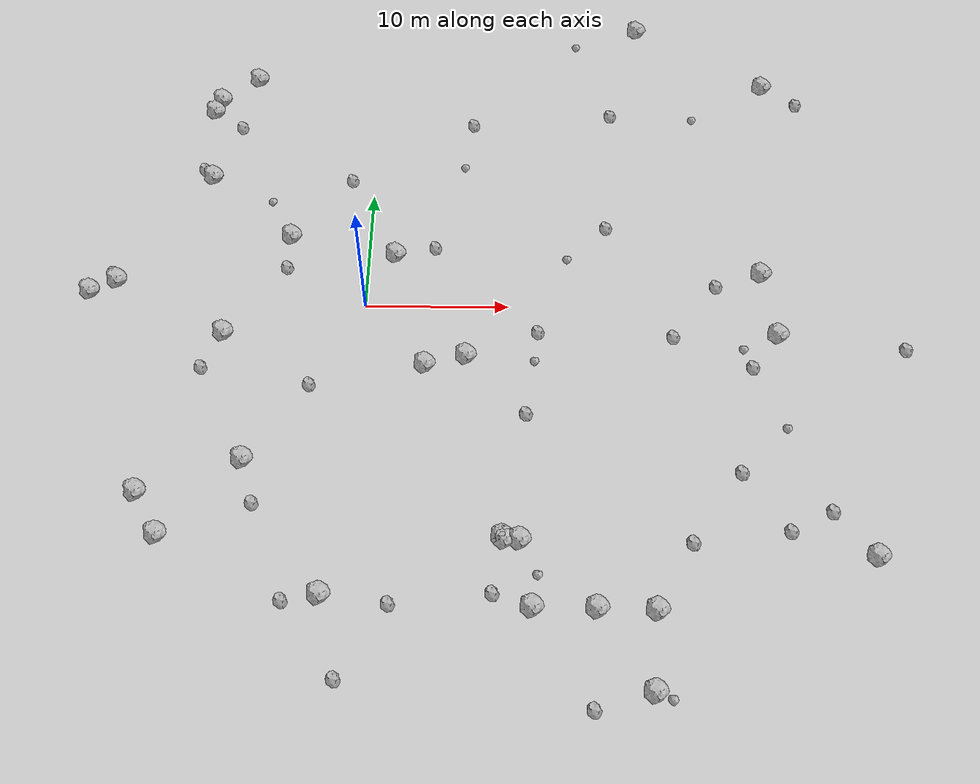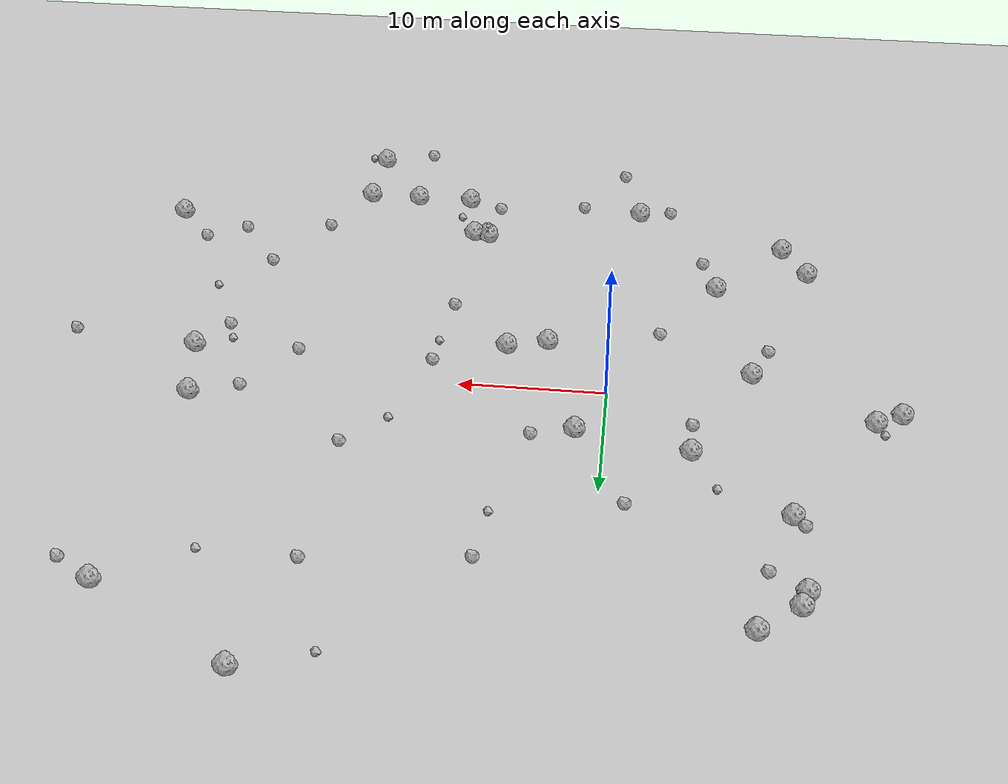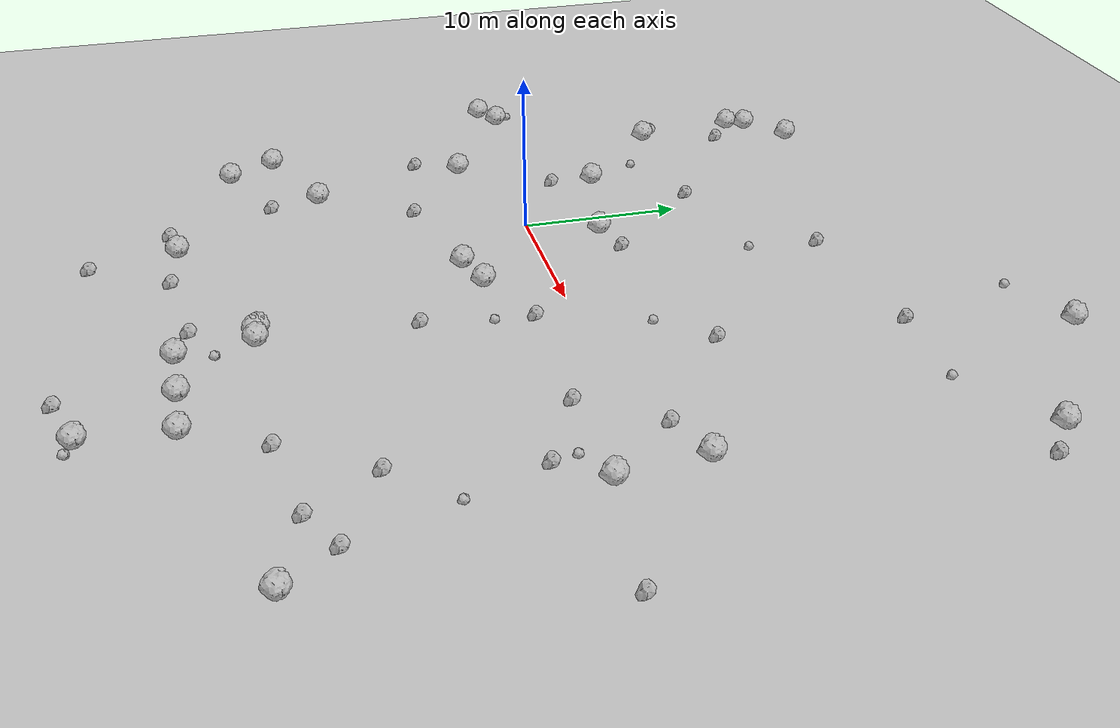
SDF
<sdf version="1.6">
 <world name="default">
  <include><uri>model://custom_ground</uri></include>
  <include><uri>model://sun</uri></include>
  <model name="rock1_0_0">
   <include><uri>model://rock1</uri><pose>-9.77276181470488 21.8099734527842 0.5 0 0 0</pose></include>
  </model>
  <model name="rock1_0_1">
   <include><uri>model://rock1</uri><pose>15.529140210550814 -22.66288977719951 0.5 0 0 0</pose></include>
  </model>
  <model name="rock1_0_2">
   <include><uri>model://rock1</uri><pose>10.802766246970773 -18.14908372542623 0.5 0 0 0</pose></include>
  </model>
  <model name="rock1_0_3">
   <include><uri>model://rock1</uri><pose>7.1267367151764205 -4.317388145157924 0.5 0 0 0</pose></include>
  </model>
  <model name="rock1_0_4">
   <include><uri>model://rock1</uri><pose>4.335377980278594 -5.060748344593421 0.5 0 0 0</pose></include>
  </model>
  <model name="rock1_0_5">
   <include><uri>model://rock1</uri><pose>-5.740439910997395 5.9691690261330805 0.5 0 0 0</pose></include>
  </model>
  <model name="rock1_0_6">
   <include><uri>model://rock1</uri><pose>-9.71702643830284 -2.5857592259953606 0.5 0 0 0</pose></include>
  </model>
  <model name="rock1_0_7">
   <include><uri>model://rock1</uri><pose>-12.819439266588102 18.29644983982496 0.5 0 0 0</pose></include>
  </model>
  <model name="rock1_0_8">
   <include><uri>model://rock1</uri><pose>28.656645429457157 -2.376011091754407 0.5 0 0 0</pose></include>
  </model>
  <model name="rock1_0_9">
   <include><uri>model://rock1</uri><pose>9.820375933043767 -18.11331956434958 0.5 0 0 0</pose></include>
  </model>
  <model name="rock1_0_10">
   <include><uri>model://rock1</uri><pose>-19.570708304993765 0.8835321520810169 0.5 0 0 0</pose></include>
  </model>
  <model name="rock1_0_11">
   <include><uri>model://rock1</uri><pose>11.542015412736642 -22.64654892862683 0.5 0 0 0</pose></include>
  </model>
  <model name="rock1_0_12">
   <include><uri>model://rock1</uri><pose>-12.072474149136594 -18.024422969135216 0.5 0 0 0</pose></include>
  </model>
  <model name="rock1_0_13">
   <include><uri>model://rock1</uri><pose>20.2976462596757 27.61976532385612 0.5 0 0 0</pose></include>
  </model>
  <model name="rock1_0_14">
   <include><uri>model://rock1</uri><pose>-7.263154652959729 -12.584405245134082 0.5 0 0 0</pose></include>
  </model>
  <model name="rock1_0_15">
   <include><uri>model://rock1</uri><pose>-13.83027314720993 -15.04061631097918 0.5 0 0 0</pose></include>
  </model>
  <model name="rock1_0_16">
   <include><uri>model://rock1</uri><pose>-12.140821696426434 11.611560955578511 0.5 0 0 0</pose></include>
  </model>
  <model name="rock1_0_17">
   <include><uri>model://rock1</uri><pose>27.984937752587918 2.8802691164289342 0.5 0 0 0</pose></include>
  </model>
  <model name="rock1_0_18">
   <include><uri>model://rock1</uri><pose>9.715163474016368 -17.979564762945287 0.5 0 0 0</pose></include>
  </model>
  <model name="rock1_0_19">
   <include><uri>model://rock1</uri><pose>18.785384007735715 -27.877572683564146 0.5 0 0 0</pose></include>
  </model>
  <model name="rock1_0_20">
   <include><uri>model://rock1</uri><pose>-17.807545940576453 1.875232186931754 0.5 0 0 0</pose></include>
  </model>
  <model name="rock1_0_21">
   <include><uri>model://rock1</uri><pose>1.8942526935705146 4.3882175304499285 0.5 0 0 0</pose></include>
  </model>
  <model name="rock1_0_22">
   <include><uri>model://rock1</uri><pose>-1.488478801488565 -21.98220548981073 0.5 0 0 0</pose></include>
  </model>
  <model name="rock1_0_23">
   <include><uri>model://rock1</uri><pose>-12.431893261029971 19.56632043564703 0.5 0 0 0</pose></include>
  </model>
  <model name="rock1_0_24">
   <include><uri>model://rock1</uri><pose>29.865523169611052 21.397833099032916 0.5 0 0 0</pose></include>
  </model>
  <model name="rock1_0_25">
   <include><uri>model://rock1</uri><pose>19.197967476564564 -22.746143736703253 0.5 0 0 0</pose></include>
  </model>
  <model name="rock1_0_26">
   <include><uri>model://rock1</uri><pose>33.112570294840296 -19.02785296915463 0.5 0 0 0</pose></include>
  </model>
  <model name="rock2_0_0">
   <include><uri>model://rock2</uri><pose>24.672884386237477 1.7697222131145125 0.3 0 0 0</pose></include>
  </model>
  <model name="rock2_0_1">
   <include><uri>model://rock2</uri><pose>9.0921642755625 -21.76567222523215 0.3 0 0 0</pose></include>
  </model>
  <model name="rock2_0_2">
   <include><uri>model://rock2</uri><pose>7.282691312202164 17.126446933850303 0.3 0 0 0</pose></include>
  </model>
  <model name="rock2_0_3">
   <include><uri>model://rock2</uri><pose>-3.8049064353835576 -22.39104044151418 0.3 0 0 0</pose></include>
  </model>
  <model name="rock2_0_4">
   <include><uri>model://rock2</uri><pose>-12.886581596115665 12.356115863473576 0.3 0 0 0</pose></include>
  </model>
  <model name="rock2_0_5">
   <include><uri>model://rock2</uri><pose>37.303327007445 -3.4718597730901273 0.3 0 0 0</pose></include>
  </model>
  <model name="rock2_0_6">
   <include><uri>model://rock2</uri><pose>-10.546117190324754 16.66951056696442 0.3 0 0 0</pose></include>
  </model>
  <model name="rock2_0_7">
   <include><uri>model://rock2</uri><pose>17.800150782080387 18.22044048188374 0.3 0 0 0</pose></include>
  </model>
  <model name="rock2_0_8">
   <include><uri>model://rock2</uri><pose>-5.814131007291007 3.1368022297072073 0.3 0 0 0</pose></include>
  </model>
  <model name="rock2_0_9">
   <include><uri>model://rock2</uri><pose>30.704000315494632 -15.94908447157485 0.3 0 0 0</pose></include>
  </model>
  <model name="rock2_0_10">
   <include><uri>model://rock2</uri><pose>32.309816442646465 19.582897744444473 0.3 0 0 0</pose></include>
  </model>
  <model name="rock2_0_11">
   <include><uri>model://rock2</uri><pose>21.679872227992156 -18.224990331723646 0.3 0 0 0</pose></include>
  </model>
  <model name="rock2_0_12">
   <include><uri>model://rock2</uri><pose>-1.6767650726348933 11.37654166789465 0.3 0 0 0</pose></include>
  </model>
  <model name="rock2_0_13">
   <include><uri>model://rock2</uri><pose>17.071826191386606 7.012280428114302 0.3 0 0 0</pose></include>
  </model>
  <model name="rock2_0_14">
   <include><uri>model://rock2</uri><pose>25.184267354318152 -13.19233265089305 0.3 0 0 0</pose></include>
  </model>
  <model name="rock2_0_15">
   <include><uri>model://rock2</uri><pose>11.214550142372538 -8.896025732288791 0.3 0 0 0</pose></include>
  </model>
  <model name="rock2_0_16">
   <include><uri>model://rock2</uri><pose>-0.2020065628778447 -27.329453953755227 0.3 0 0 0</pose></include>
  </model>
  <model name="rock2_0_17">
   <include><uri>model://rock2</uri><pose>26.672328599496552 -5.038553967550495 0.3 0 0 0</pose></include>
  </model>
  <model name="rock2_0_18">
   <include><uri>model://rock2</uri><pose>15.133319890241985 -29.0064009081244 0.3 0 0 0</pose></include>
  </model>
  <model name="rock2_0_19">
   <include><uri>model://rock2</uri><pose>-3.4223382068984485 -6.755226548412445 0.3 0 0 0</pose></include>
  </model>
  <model name="rock2_0_20">
   <include><uri>model://rock2</uri><pose>27.895585488205512 -17.361032139091293 0.3 0 0 0</pose></include>
  </model>
  <model name="rock2_0_21">
   <include><uri>model://rock2</uri><pose>4.733450016711842 5.034475750067692 0.3 0 0 0</pose></include>
  </model>
  <model name="rock2_0_22">
   <include><uri>model://rock2</uri><pose>2.745883581066767 -22.538649638405964 0.3 0 0 0</pose></include>
  </model>
  <model name="rock2_0_23">
   <include><uri>model://rock2</uri><pose>12.055524504233738 -2.2964629682996716 0.3 0 0 0</pose></include>
  </model>
  <model name="rock2_0_24">
   <include><uri>model://rock2</uri><pose>-6.309073234697582 -15.76173935061103 0.3 0 0 0</pose></include>
  </model>
  <model name="rock2_0_25">
   <include><uri>model://rock2</uri><pose>-10.909597122056063 -5.443741095262997 0.3 0 0 0</pose></include>
  </model>
  <model name="rock2_0_26">
   <include><uri>model://rock2</uri><pose>21.398545739676315 -2.586239220714205 0.3 0 0 0</pose></include>
  </model>
  <model name="rock3_0_0">
   <include><uri>model://rock3</uri><pose>6.70923281369755 12.793565016293115 0.2 0 0 0</pose></include>
  </model>
  <model name="rock3_0_1">
   <include><uri>model://rock3</uri><pose>11.809368077345475 -4.670966708352587 0.2 0 0 0</pose></include>
  </model>
  <model name="rock3_0_2">
   <include><uri>model://rock3</uri><pose>-18.404632246733396 2.797411758416807 0.2 0 0 0</pose></include>
  </model>
  <model name="rock3_0_3">
   <include><uri>model://rock3</uri><pose>15.359044884560461 25.82914263770887 0.2 0 0 0</pose></include>
  </model>
  <model name="rock3_0_4">
   <include><uri>model://rock3</uri><pose>26.176618996268964 -3.5359635993462177 0.2 0 0 0</pose></include>
  </model>
  <model name="rock3_0_5">
   <include><uri>model://rock3</uri><pose>11.899140303874063 -20.493666975257852 0.2 0 0 0</pose></include>
  </model>
  <model name="rock3_0_6">
   <include><uri>model://rock3</uri><pose>28.499080414997145 -9.813492434353233 0.2 0 0 0</pose></include>
  </model>
  <model name="rock3_0_7">
   <include><uri>model://rock3</uri><pose>-7.497578106265962 9.2885482675823 0.2 0 0 0</pose></include>
  </model>
  <model name="rock3_0_8">
   <include><uri>model://rock3</uri><pose>14.200542419742185 4.128393674195415 0.2 0 0 0</pose></include>
  </model>
  <model name="rock3_0_9">
   <include><uri>model://rock3</uri><pose>24.117507120994773 17.913348843743883 0.2 0 0 0</pose></include>
  </model>
  <model name="rock3_0_10">
   <include><uri>model://rock3</uri><pose>19.7718291208647 -28.318921247102843 0.2 0 0 0</pose></include>
  </model>
 </world>
</sdf>
